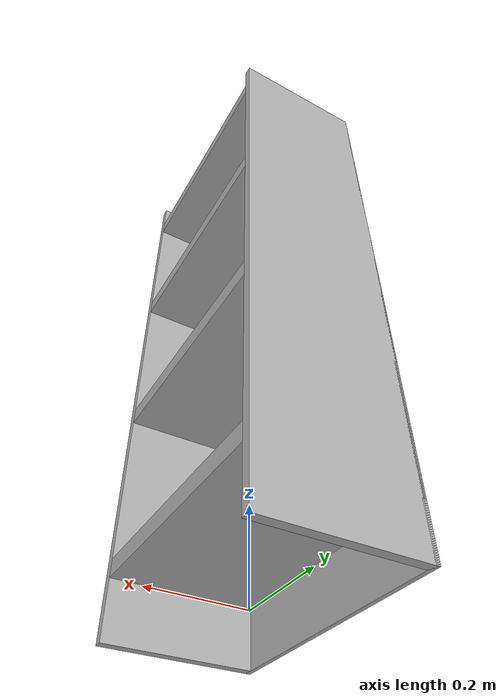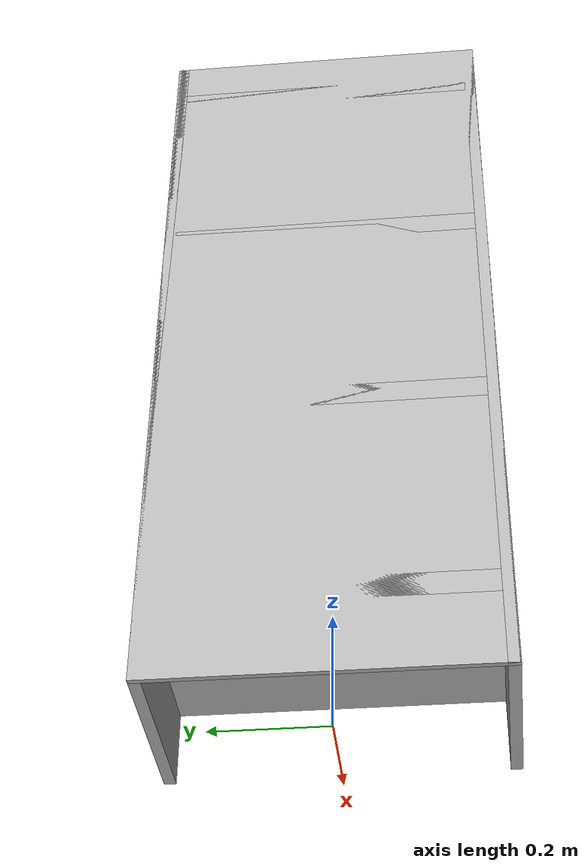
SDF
<?xml version="1.0"?>
<sdf version="1.6">
  <model name="rwc2017/shelf_black">
    <link name="1_link">
      <collision name="1_col">
        <geometry>
          <box>
            <size>0.01 0.59 1.4</size>
          </box>
        </geometry>
      </collision>
      <visual name="1_vis">
        <geometry>
          <box>
            <size>0.01 0.59 1.4</size>
          </box>
        </geometry>
      </visual>
      <pose>-0.165 0.0 0.7 0 0 0</pose>
    </link>
    <link name="2_link">
      <collision name="2_col">
        <geometry>
          <box>
            <size>0.34 0.02 1.4</size>
          </box>
        </geometry>
      </collision>
      <visual name="2_vis">
        <geometry>
          <box>
            <size>0.34 0.02 1.4</size>
          </box>
        </geometry>
      </visual>
      <pose>0 -0.285 0.7 0 0 0</pose>
    </link>
    <link name="3_link">
      <collision name="3_col">
        <geometry>
          <box>
            <size>0.34 0.02 1.4</size>
          </box>
        </geometry>
      </collision>
      <visual name="3_vis">
        <geometry>
          <box>
            <size>0.34 0.02 1.4</size>
          </box>
        </geometry>
      </visual>
      <pose>0 0.285 0.7 0 0 0</pose>
    </link>
    <link name="4_link">
      <collision name="4_col">
        <geometry>
          <box>
            <size>0.34 0.55 0.04</size>
          </box>
        </geometry>
      </collision>
      <visual name="4_vis">
        <geometry>
          <box>
            <size>0.34 0.55 0.04</size>
          </box>
        </geometry>
      </visual>
      <pose>0 0 0.145 0 0 0</pose>
    </link>
    <link name="5_link">
      <collision name="5_col">
        <geometry>
          <box>
            <size>0.34 0.55 0.04</size>
          </box>
        </geometry>
      </collision>
      <visual name="5_vis">
        <geometry>
          <box>
            <size>0.34 0.55 0.04</size>
          </box>
        </geometry>
      </visual>
      <pose>0 0 0.53 0 0 0</pose>
    </link>
    <link name="6_link">
      <collision name="6_col">
        <geometry>
          <box>
            <size>0.34 0.55 0.04</size>
          </box>
        </geometry>
      </collision>
      <visual name="6_vis">
        <geometry>
          <box>
            <size>0.34 0.55 0.04</size>
          </box>
        </geometry>
      </visual>
      <pose>0 0 0.92 0 0 0</pose>
    </link>
    <link name="7_link">
      <collision name="7_col">
        <geometry>
          <box>
            <size>0.34 0.55 0.04</size>
          </box>
        </geometry>
      </collision>
      <visual name="7_vis">
        <geometry>
          <box>
            <size>0.34 0.55 0.04</size>
          </box>
        </geometry>
      </visual>
      <pose>0 0 1.3 0 0 0</pose>
    </link>
    <link name="in_front_of">
      <virtual_volume name="in_front_of_vv">
        <geometry>
          <box>
            <size>0.2 0.39 0.01</size>
          </box>
        </geometry>
        <pose>0.67 0.0 0.005 0 0 0</pose>
      </virtual_volume>
    </link>
    <link name="shelf1">
      <virtual_volume name="shelf1_vv">
        <geometry>
          <box>
            <size>0.3 0.49 0.25</size>
          </box>
        </geometry>
        <pose>0.01 0.0 0.31 0 0 0</pose>
      </virtual_volume>
    </link>
    <link name="shelf2">
      <virtual_volume name="shelf2_vv">
        <geometry>
          <box>
            <size>0.3 0.49 0.25</size>
          </box>
        </geometry>
        <pose>0.01 0.0 0.695 0 0 0</pose>
      </virtual_volume>
    </link>
    <link name="shelf3">
      <virtual_volume name="shelf3_vv">
        <geometry>
          <box>
            <size>0.3 0.49 0.25</size>
          </box>
        </geometry>
        <pose>0.01 0.0 1.085 0 0 0</pose>
      </virtual_volume>
    </link>
    <link name="shelf4">
      <virtual_volume name="shelf4_vv">
        <geometry>
          <box>
            <size>0.3 0.49 0.29</size>
          </box>
        </geometry>
        <pose>0.01 0.0 1.445 0 0 0</pose>
      </virtual_volume>
    </link>
    <static>true</static>
  </model>
</sdf>
